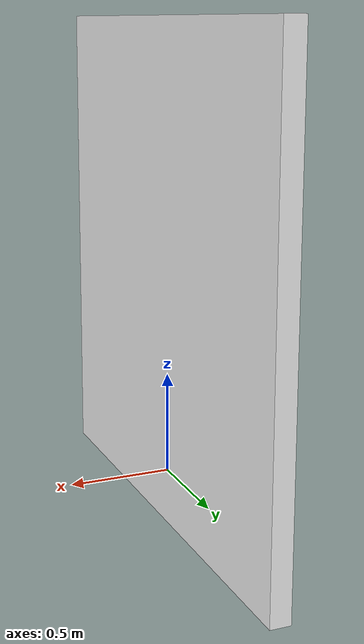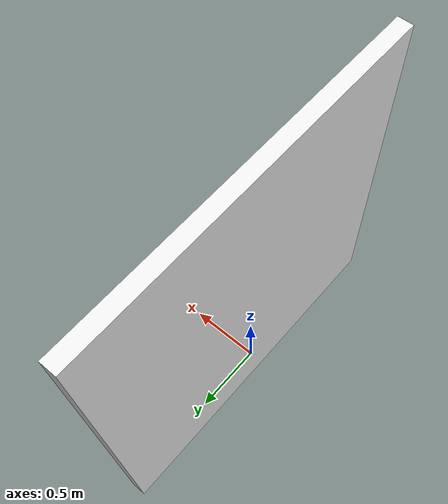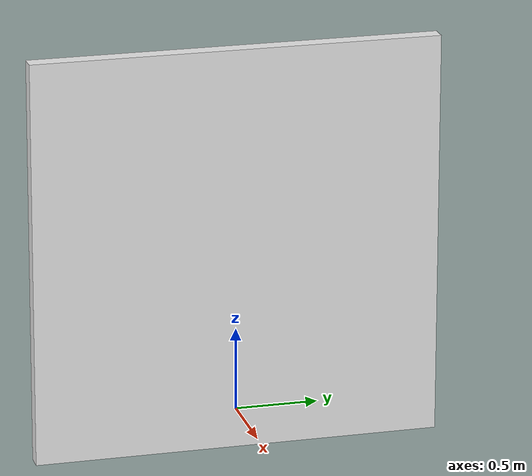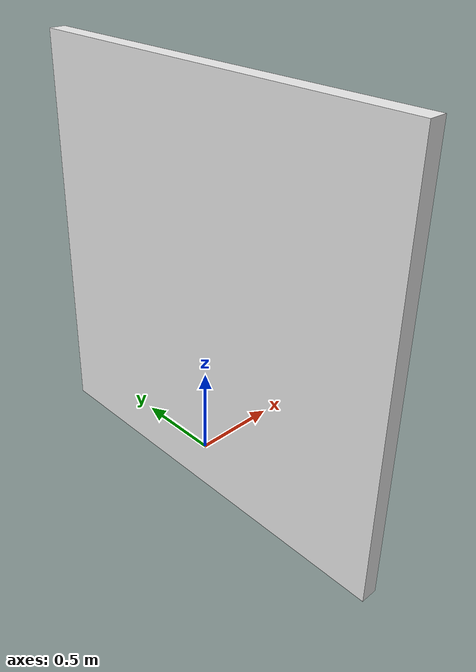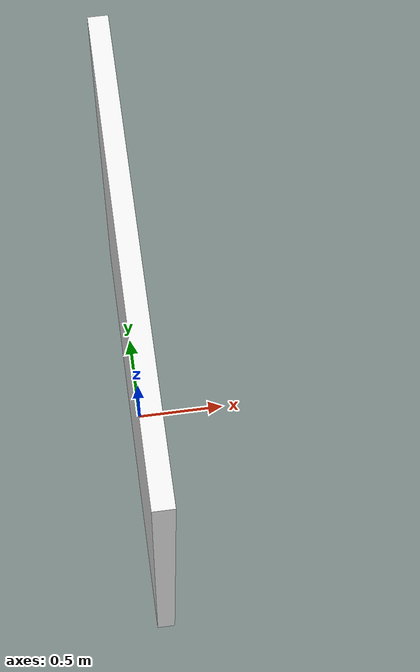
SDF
<sdf version="1.6">
  <model name="goal">
    <pose>0 0 0 0 0 0</pose>
    <link name="link">
      <pose>0 0 1 0 0 0</pose>
      <collision name="collision">
        <geometry>
          <box>
            <size>0.1 2.44 2.44</size>
          </box>
        </geometry>
      </collision>
      <visual name="visual">
        <geometry>
          <box>
            <size>0.1 2.44 2.44</size>
          </box>
        </geometry>
        <material>
          <script>
            <uri>file://media/materials/scripts/gazebo.material</uri>
            <name>Gazebo/White</name>
          </script>
        </material>
      </visual>
    </link>
  </model>
</sdf>
